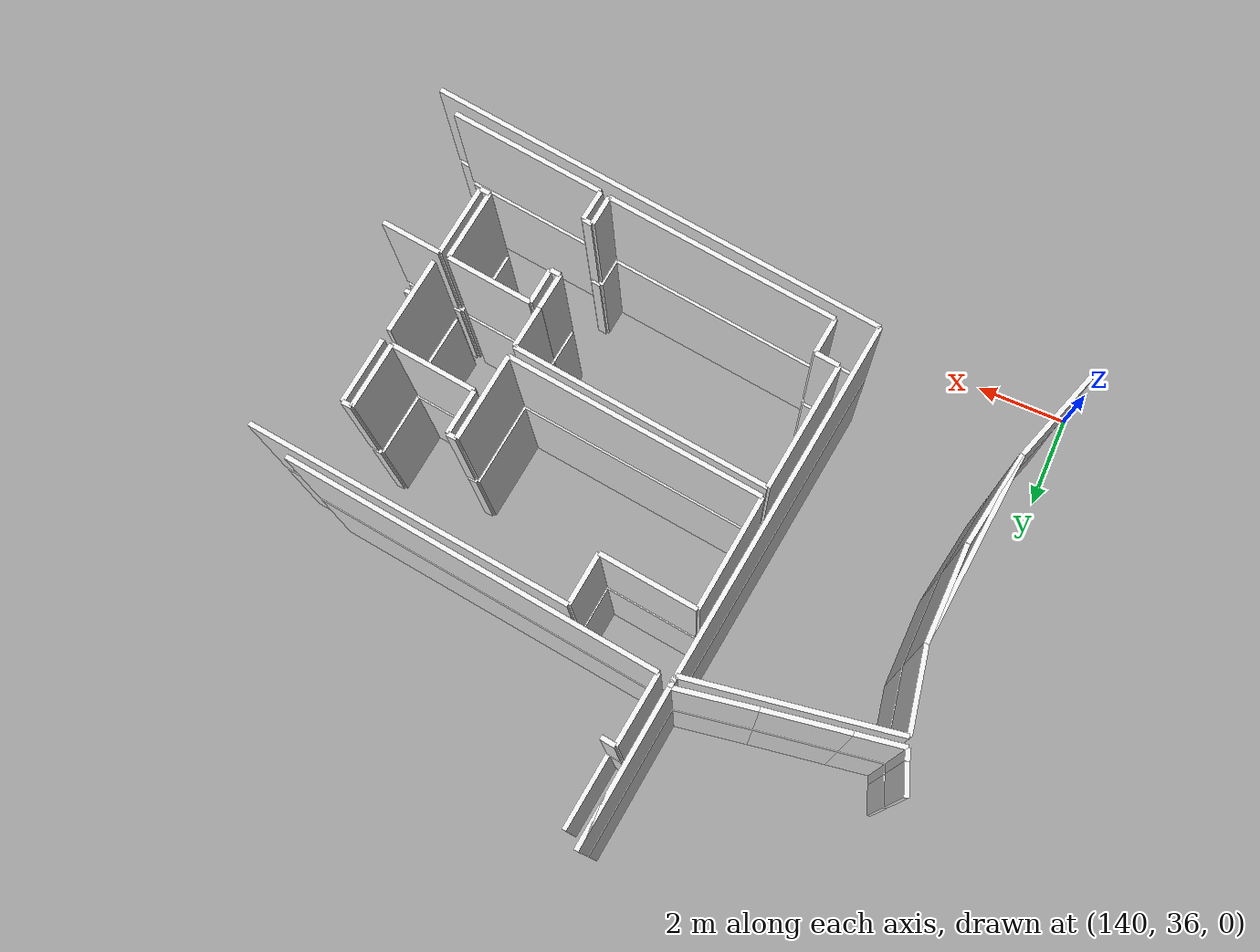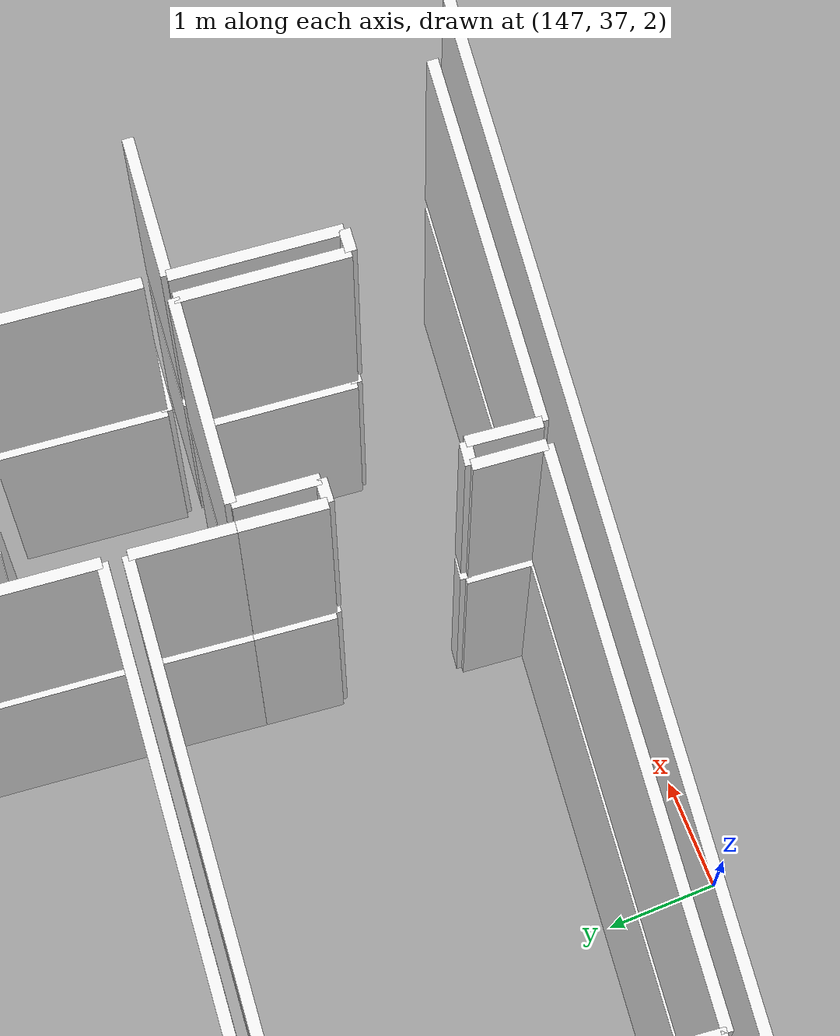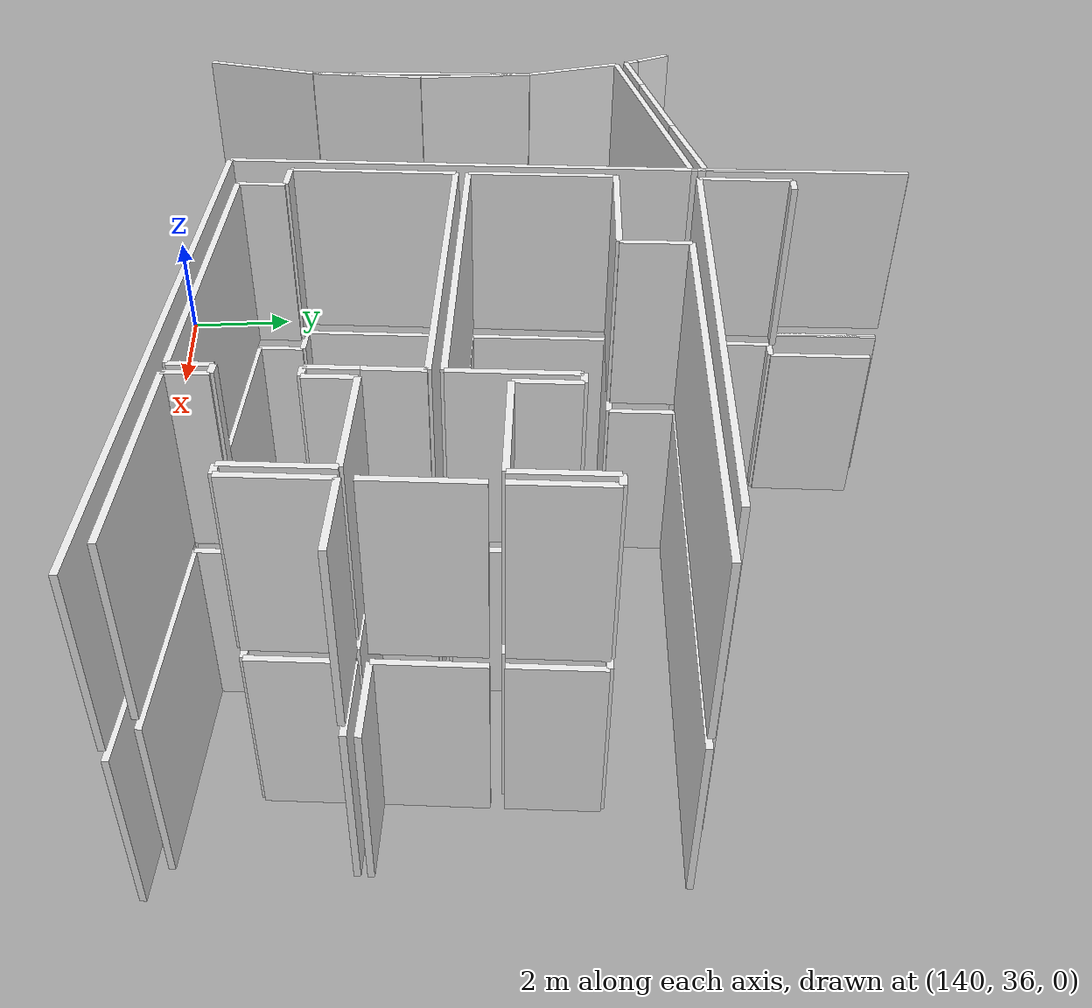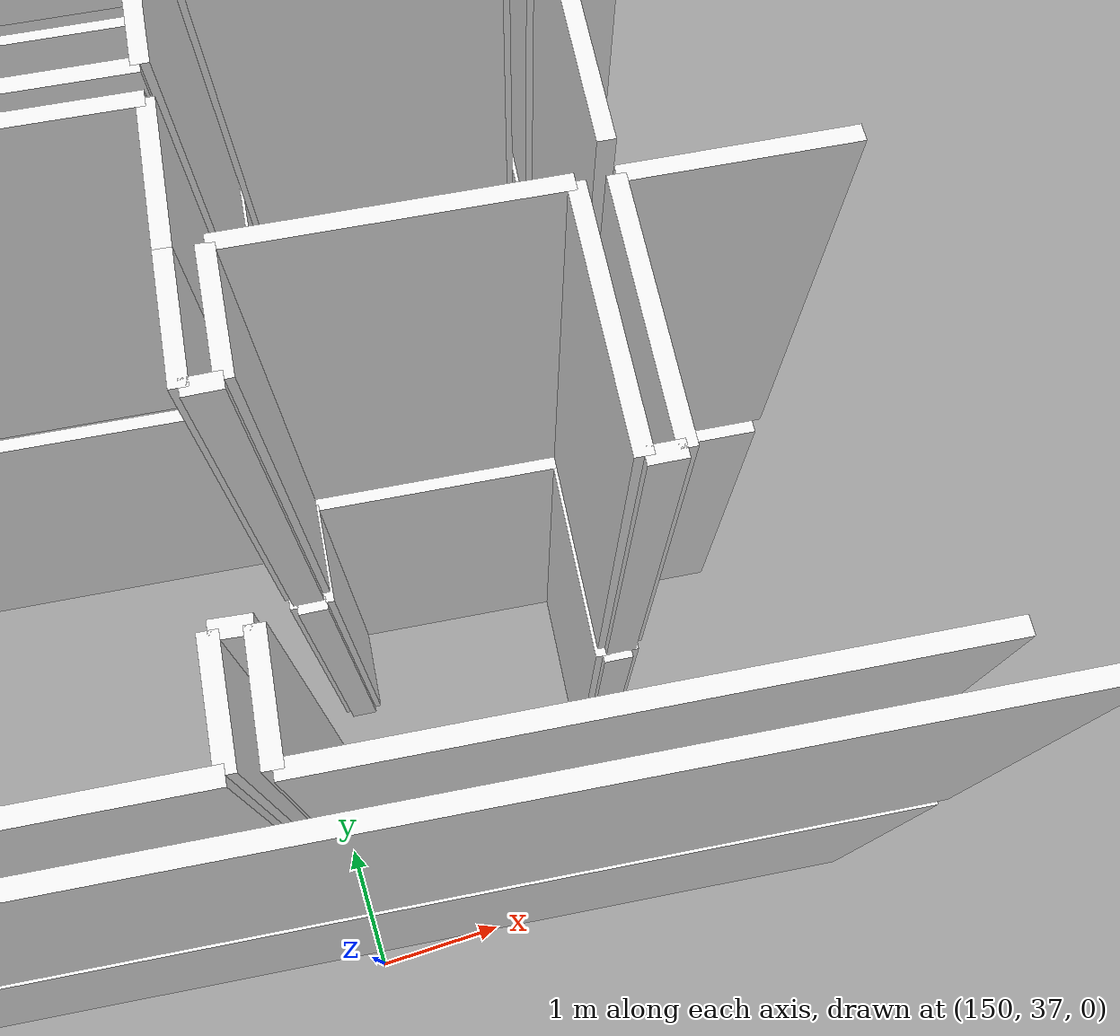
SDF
<sdf version="1.6">
 <world name="default">
  <model name="wall_150.4_39.6_0.0_link">
   <static>true</static>
   <pose>150.3649999999907 39.61500000022352 1.5 0 0 1.4513674008194029</pose>
   <link name="link">
    <visual name="visual">
     <geometry><box><size>0.7553806987169667 0.1 3</size></box></geometry>
     <material>
      <script><uri>file://media/materials/scripts/gazebo.material</uri><name>Gazebo/White</name></script>
     </material>
    </visual>
   </link>
  </model>
  <model name="wall_150.5_40.4_0.0_link">
   <static>true</static>
   <pose>150.4649999999965 40.43000000016764 1.5 0 0 1.4464413321830076</pose>
   <link name="link">
    <visual name="visual">
     <geometry><box><size>0.8868483522074317 0.1 3</size></box></geometry>
     <material>
      <script><uri>file://media/materials/scripts/gazebo.material</uri><name>Gazebo/White</name></script>
     </material>
    </visual>
   </link>
  </model>
  <model name="wall_147.8_41.2_0.0_link">
   <static>true</static>
   <pose>147.83500000002095 41.18500000005588 1.5 0 0 3.0248080581405947</pose>
   <link name="link">
    <visual name="visual">
     <geometry><box><size>5.406829015218547 0.1 3</size></box></geometry>
     <material>
      <script><uri>file://media/materials/scripts/gazebo.material</uri><name>Gazebo/White</name></script>
     </material>
    </visual>
   </link>
  </model>
  <model name="wall_145.0_40.2_0.0_link">
   <static>true</static>
   <pose>144.9900000000198 40.16500000003725 1.5 0 0 -1.690077564147906</pose>
   <link name="link">
    <visual name="visual">
     <geometry><box><size>2.689107658612167 0.1 3</size></box></geometry>
     <material>
      <script><uri>file://media/materials/scripts/gazebo.material</uri><name>Gazebo/White</name></script>
     </material>
    </visual>
   </link>
  </model>
  <model name="wall_145.1_38.8_0.0_link">
   <static>true</static>
   <pose>145.0800000000163 38.800000000046566 1.5 0 0 -0.11942892612851068</pose>
   <link name="link">
    <visual name="visual">
     <geometry><box><size>0.5035871324872246 0.1 3</size></box></geometry>
     <material>
      <script><uri>file://media/materials/scripts/gazebo.material</uri><name>Gazebo/White</name></script>
     </material>
    </visual>
   </link>
  </model>
  <model name="wall_145.3_38.4_0.0_link">
   <static>true</static>
   <pose>145.2850000000035 38.389999999897555 1.5 0 0 -1.6886684299881376</pose>
   <link name="link">
    <visual name="visual">
     <geometry><box><size>0.7653103947893748 0.1 3</size></box></geometry>
     <material>
      <script><uri>file://media/materials/scripts/gazebo.material</uri><name>Gazebo/White</name></script>
     </material>
    </visual>
   </link>
  </model>
  <model name="wall_147.7_37.7_0.0_link">
   <static>true</static>
   <pose>147.67499999998836 37.7249999998603 1.5 0 0 -0.11651301006280392</pose>
   <link name="link">
    <visual name="visual">
     <geometry><box><size>4.90324382422122 0.1 3</size></box></geometry>
     <material>
      <script><uri>file://media/materials/scripts/gazebo.material</uri><name>Gazebo/White</name></script>
     </material>
    </visual>
   </link>
  </model>
  <model name="wall_150.1_37.8_0.0_link">
   <static>true</static>
   <pose>150.14499999998952 37.75499999988824 1.5 0 0 1.4601391055905788</pose>
   <link name="link">
    <visual name="visual">
     <geometry><box><size>0.6338769595593153 0.1 3</size></box></geometry>
     <material>
      <script><uri>file://media/materials/scripts/gazebo.material</uri><name>Gazebo/White</name></script>
     </material>
    </visual>
   </link>
  </model>
  <model name="wall_150.3_38.1_0.0_link">
   <static>true</static>
   <pose>150.27999999999884 38.05499999993481 1.5 0 0 -0.14888994659904642</pose>
   <link name="link">
    <visual name="visual">
     <geometry><box><size>0.20223748414268597 0.1 3</size></box></geometry>
     <material>
      <script><uri>file://media/materials/scripts/gazebo.material</uri><name>Gazebo/White</name></script>
     </material>
    </visual>
   </link>
  </model>
  <model name="wall_150.3_37.7_0.0_link">
   <static>true</static>
   <pose>150.3399999999965 37.71999999997206 1.5 0 0 -1.695151321341658</pose>
   <link name="link">
    <visual name="visual">
     <geometry><box><size>0.6449806199952839 0.1 3</size></box></geometry>
     <material>
      <script><uri>file://media/materials/scripts/gazebo.material</uri><name>Gazebo/White</name></script>
     </material>
    </visual>
   </link>
  </model>
  <model name="wall_151.9_37.2_0.0_link">
   <static>true</static>
   <pose>151.9199999999837 37.20999999996275 1.5 0 0 -0.11675057835937525</pose>
   <link name="link">
    <visual name="visual">
     <geometry><box><size>3.2622078413023767 0.1 3</size></box></geometry>
     <material>
      <script><uri>file://media/materials/scripts/gazebo.material</uri><name>Gazebo/White</name></script>
     </material>
    </visual>
   </link>
  </model>
  <model name="wall_153.2_39.7_0.0_link">
   <static>true</static>
   <pose>153.22000000000116 39.65999999991618 1.5 0 0 3.0291655226601732</pose>
   <link name="link">
    <visual name="visual">
     <geometry><box><size>1.2478781992477335 0.1 3</size></box></geometry>
     <material>
      <script><uri>file://media/materials/scripts/gazebo.material</uri><name>Gazebo/White</name></script>
     </material>
    </visual>
   </link>
  </model>
  <model name="wall_152.5_39.0_0.0_link">
   <static>true</static>
   <pose>152.51499999998487 38.98999999999069 1.5 0 0 -1.6851599802083586</pose>
   <link name="link">
    <visual name="visual">
     <geometry><box><size>1.4897315194152685 0.1 3</size></box></geometry>
     <material>
      <script><uri>file://media/materials/scripts/gazebo.material</uri><name>Gazebo/White</name></script>
     </material>
    </visual>
   </link>
  </model>
  <model name="wall_152.3_38.3_0.0_link">
   <static>true</static>
   <pose>152.3299999999872 38.26000000000931 1.5 0 0 3.0419240010121844</pose>
   <link name="link">
    <visual name="visual">
     <geometry><box><size>0.20099751243585498 0.1 3</size></box></geometry>
     <material>
      <script><uri>file://media/materials/scripts/gazebo.material</uri><name>Gazebo/White</name></script>
     </material>
    </visual>
   </link>
  </model>
  <model name="wall_152.3_39.0_0.0_link">
   <static>true</static>
   <pose>152.31500000000233 39.01000000000931 1.5 0 0 1.4564326733426174</pose>
   <link name="link">
    <visual name="visual">
     <geometry><box><size>1.4897315194219107 0.1 3</size></box></geometry>
     <material>
      <script><uri>file://media/materials/scripts/gazebo.material</uri><name>Gazebo/White</name></script>
     </material>
    </visual>
   </link>
  </model>
  <model name="wall_151.5_39.9_0.0_link">
   <static>true</static>
   <pose>151.50500000000466 39.85499999998137 1.5 0 0 3.0248080581431034</pose>
   <link name="link">
    <visual name="visual">
     <geometry><box><size>1.8022763384447233 0.1 3</size></box></geometry>
     <material>
      <script><uri>file://media/materials/scripts/gazebo.material</uri><name>Gazebo/White</name></script>
     </material>
    </visual>
   </link>
  </model>
  <model name="wall_150.6_39.6_0.0_link">
   <static>true</static>
   <pose>150.57000000000698 39.59000000008382 1.5 0 0 -1.6784861976067038</pose>
   <link name="link">
    <visual name="visual">
     <geometry><box><size>0.7443117623918901 0.1 3</size></box></geometry>
     <material>
      <script><uri>file://media/materials/scripts/gazebo.material</uri><name>Gazebo/White</name></script>
     </material>
    </visual>
   </link>
  </model>
  <model name="wall_150.4_39.2_0.0_link">
   <static>true</static>
   <pose>150.42500000001746 39.230000000214204 1.5 0 0 3.0466409471685547</pose>
   <link name="link">
    <visual name="visual">
     <geometry><box><size>0.21095023111991618 0.1 3</size></box></geometry>
     <material>
      <script><uri>file://media/materials/scripts/gazebo.material</uri><name>Gazebo/White</name></script>
     </material>
    </visual>
   </link>
  </model>
  <model name="wall_149.6_44.9_0.0_link">
   <static>true</static>
   <pose>149.55499999999302 44.91500000003725 1.5 0 0 3.0211592075440525</pose>
   <link name="link">
    <visual name="visual">
     <geometry><box><size>7.907275131168029 0.1 3</size></box></geometry>
     <material>
      <script><uri>file://media/materials/scripts/gazebo.material</uri><name>Gazebo/White</name></script>
     </material>
    </visual>
   </link>
  </model>
  <model name="wall_145.7_46.1_0.0_link">
   <static>true</static>
   <pose>145.72000000000116 46.13000000012107 1.5 0 0 1.449769106988834</pose>
   <link name="link">
    <visual name="visual">
     <geometry><box><size>1.4909057649436974 0.1 3</size></box></geometry>
     <material>
      <script><uri>file://media/materials/scripts/gazebo.material</uri><name>Gazebo/White</name></script>
     </material>
    </visual>
   </link>
  </model>
  <model name="wall_146.0_46.9_0.0_link">
   <static>true</static>
   <pose>145.95999999999185 46.85000000009313 1.5 0 0 -0.132551532423765</pose>
   <link name="link">
    <visual name="visual">
     <geometry><box><size>0.3026549190018152 0.1 3</size></box></geometry>
     <material>
      <script><uri>file://media/materials/scripts/gazebo.material</uri><name>Gazebo/White</name></script>
     </material>
    </visual>
   </link>
  </model>
  <model name="wall_146.2_47.7_0.0_link">
   <static>true</static>
   <pose>146.20999999999185 47.675000000046566 1.5 0 0 1.4530010049136584</pose>
   <link name="link">
    <visual name="visual">
     <geometry><box><size>1.7017931718677757 0.1 3</size></box></geometry>
     <material>
      <script><uri>file://media/materials/scripts/gazebo.material</uri><name>Gazebo/White</name></script>
     </material>
    </visual>
   </link>
  </model>
  <model name="wall_152.7_40.7_0.0_link">
   <static>true</static>
   <pose>152.7149999999965 40.71999999997206 1.5 0 0 -1.6904748161031404</pose>
   <link name="link">
    <visual name="visual">
     <geometry><box><size>1.5913830458958753 0.1 3</size></box></geometry>
     <material>
      <script><uri>file://media/materials/scripts/gazebo.material</uri><name>Gazebo/White</name></script>
     </material>
    </visual>
   </link>
  </model>
  <model name="wall_153.2_39.9_0.0_link">
   <static>true</static>
   <pose>153.24499999999534 39.85499999998137 1.5 0 0 -0.11942892631213106</pose>
   <link name="link">
    <visual name="visual">
     <geometry><box><size>1.2589678312458021 0.1 3</size></box></geometry>
     <material>
      <script><uri>file://media/materials/scripts/gazebo.material</uri><name>Gazebo/White</name></script>
     </material>
    </visual>
   </link>
  </model>
  <model name="wall_152.9_42.4_0.0_link">
   <static>true</static>
   <pose>152.9100000000035 42.39999999990687 1.5 0 0 1.4553696664370197</pose>
   <link name="link">
    <visual name="visual">
     <geometry><box><size>1.3892443988310157 0.1 3</size></box></geometry>
     <material>
      <script><uri>file://media/materials/scripts/gazebo.material</uri><name>Gazebo/White</name></script>
     </material>
    </visual>
   </link>
  </model>
  <model name="wall_152.9_43.1_0.0_link">
   <static>true</static>
   <pose>152.88999999998487 43.0999999998603 1.5 0 0 3.0419240010121844</pose>
   <link name="link">
    <visual name="visual">
     <geometry><box><size>0.20099751243585498 0.1 3</size></box></geometry>
     <material>
      <script><uri>file://media/materials/scripts/gazebo.material</uri><name>Gazebo/White</name></script>
     </material>
    </visual>
   </link>
  </model>
  <model name="wall_152.7_42.4_0.0_link">
   <static>true</static>
   <pose>152.70999999999185 42.419999999925494 1.5 0 0 -1.6862229871527734</pose>
   <link name="link">
    <visual name="visual">
     <geometry><box><size>1.3892443988310157 0.1 3</size></box></geometry>
     <material>
      <script><uri>file://media/materials/scripts/gazebo.material</uri><name>Gazebo/White</name></script>
     </material>
    </visual>
   </link>
  </model>
  <model name="wall_151.7_41.8_0.0_link">
   <static>true</static>
   <pose>151.73500000001513 41.83499999996275 1.5 0 0 3.02480805813934</pose>
   <link name="link">
    <visual name="visual">
     <geometry><box><size>1.8022763383869123 0.1 3</size></box></geometry>
     <material>
      <script><uri>file://media/materials/scripts/gazebo.material</uri><name>Gazebo/White</name></script>
     </material>
    </visual>
   </link>
  </model>
  <model name="wall_150.9_42.4_0.0_link">
   <static>true</static>
   <pose>150.89500000001863 42.40999999991618 1.5 0 0 1.4543048661080447</pose>
   <link name="link">
    <visual name="visual">
     <geometry><box><size>0.9464142855493431 0.1 3</size></box></geometry>
     <material>
      <script><uri>file://media/materials/scripts/gazebo.material</uri><name>Gazebo/White</name></script>
     </material>
    </visual>
   </link>
  </model>
  <model name="wall_150.9_42.9_0.0_link">
   <static>true</static>
   <pose>150.85000000000582 42.889999999897555 1.5 0 0 3.0419240010121844</pose>
   <link name="link">
    <visual name="visual">
     <geometry><box><size>0.20099751243585498 0.1 3</size></box></geometry>
     <material>
      <script><uri>file://media/materials/scripts/gazebo.material</uri><name>Gazebo/White</name></script>
     </material>
    </visual>
   </link>
  </model>
  <model name="wall_150.6_42.0_0.0_link">
   <static>true</static>
   <pose>150.64499999998952 41.98999999999069 1.5 0 0 -1.6856729322336463</pose>
   <link name="link">
    <visual name="visual">
     <geometry><box><size>1.8320753257982048 0.1 3</size></box></geometry>
     <material>
      <script><uri>file://media/materials/scripts/gazebo.material</uri><name>Gazebo/White</name></script>
     </material>
    </visual>
   </link>
  </model>
  <model name="wall_147.9_41.4_0.0_link">
   <static>true</static>
   <pose>147.85499999998137 41.390000000130385 1.5 0 0 3.026645366783984</pose>
   <link name="link">
    <visual name="visual">
     <geometry><box><size>5.405672946089928 0.1 3</size></box></geometry>
     <material>
      <script><uri>file://media/materials/scripts/gazebo.material</uri><name>Gazebo/White</name></script>
     </material>
    </visual>
   </link>
  </model>
  <model name="wall_145.3_42.9_0.0_link">
   <static>true</static>
   <pose>145.30499999999302 42.88500000000931 1.5 0 0 1.4573613349631278</pose>
   <link name="link">
    <visual name="visual">
     <geometry><box><size>2.385330165476587 0.1 3</size></box></geometry>
     <material>
      <script><uri>file://media/materials/scripts/gazebo.material</uri><name>Gazebo/White</name></script>
     </material>
    </visual>
   </link>
  </model>
  <model name="wall_146.5_43.9_0.0_link">
   <static>true</static>
   <pose>146.45999999999185 43.949999999953434 1.5 0 0 -0.11710874445097873</pose>
   <link name="link">
    <visual name="visual">
     <geometry><box><size>2.0540691321857394 0.1 3</size></box></geometry>
     <material>
      <script><uri>file://media/materials/scripts/gazebo.material</uri><name>Gazebo/White</name></script>
     </material>
    </visual>
   </link>
  </model>
  <model name="wall_147.5_44.4_0.0_link">
   <static>true</static>
   <pose>147.53999999997905 44.37000000011176 1.5 0 0 1.460139105632832</pose>
   <link name="link">
    <visual name="visual">
     <geometry><box><size>1.086646216650026 0.1 3</size></box></geometry>
     <material>
      <script><uri>file://media/materials/scripts/gazebo.material</uri><name>Gazebo/White</name></script>
     </material>
    </visual>
   </link>
  </model>
  <model name="wall_151.0_44.5_0.0_link">
   <static>true</static>
   <pose>150.9899999999907 44.5250000001397 1.5 0 0 -0.11308479368536209</pose>
   <link name="link">
    <visual name="visual">
     <geometry><box><size>6.8235841022447685 0.1 3</size></box></geometry>
     <material>
      <script><uri>file://media/materials/scripts/gazebo.material</uri><name>Gazebo/White</name></script>
     </material>
    </visual>
   </link>
  </model>
  <model name="wall_145.5_47.2_0.0_link">
   <static>true</static>
   <pose>145.52999999999884 47.169999999925494 1.5 0 0 -1.6814535479747077</pose>
   <link name="link">
    <visual name="visual">
     <geometry><box><size>3.259938649956506 0.1 3</size></box></geometry>
     <material>
      <script><uri>file://media/materials/scripts/gazebo.material</uri><name>Gazebo/White</name></script>
     </material>
    </visual>
   </link>
  </model>
  <model name="wall_144.5_45.4_0.0_link">
   <static>true</static>
   <pose>144.53999999997905 45.41499999980442 1.5 0 0 -2.9764439761635133</pose>
   <link name="link">
    <visual name="visual">
     <geometry><box><size>1.6423458831789883 0.1 3</size></box></geometry>
     <material>
      <script><uri>file://media/materials/scripts/gazebo.material</uri><name>Gazebo/White</name></script>
     </material>
    </visual>
   </link>
  </model>
  <model name="wall_142.9_45.1_0.0_link">
   <static>true</static>
   <pose>142.88999999998487 45.14999999990687 1.5 0 0 -2.9880488711795428</pose>
   <link name="link">
    <visual name="visual">
     <geometry><box><size>1.6999999999589122 0.1 3</size></box></geometry>
     <material>
      <script><uri>file://media/materials/scripts/gazebo.material</uri><name>Gazebo/White</name></script>
     </material>
    </visual>
   </link>
  </model>
  <model name="wall_141.6_44.9_0.0_link">
   <static>true</static>
   <pose>141.56500000000233 44.94500000006519 1.5 0 0 -2.9881687321003683</pose>
   <link name="link">
    <visual name="visual">
     <geometry><box><size>0.9815294187735064 0.1 3</size></box></geometry>
     <material>
      <script><uri>file://media/materials/scripts/gazebo.material</uri><name>Gazebo/White</name></script>
     </material>
    </visual>
   </link>
  </model>
  <model name="wall_141.0_45.0_0.0_link">
   <static>true</static>
   <pose>141.0450000000128 44.985000000102445 1.5 0 0 1.8662371639889692</pose>
   <link name="link">
    <visual name="visual">
     <geometry><box><size>0.24041630558764046 0.1 3</size></box></geometry>
     <material>
      <script><uri>file://media/materials/scripts/gazebo.material</uri><name>Gazebo/White</name></script>
     </material>
    </visual>
   </link>
  </model>
  <model name="wall_140.9_45.4_0.0_link">
   <static>true</static>
   <pose>140.89999999999418 45.39500000001863 1.5 0 0 1.9277082632742863</pose>
   <link name="link">
    <visual name="visual">
     <geometry><box><size>0.6296824595282008 0.1 3</size></box></geometry>
     <material>
      <script><uri>file://media/materials/scripts/gazebo.material</uri><name>Gazebo/White</name></script>
     </material>
    </visual>
   </link>
  </model>
  <model name="wall_140.8_38.1_0.0_link">
   <static>true</static>
   <pose>140.77999999999884 38.13500000000931 1.5 0 0 1.244291450100456</pose>
   <link name="link">
    <visual name="visual">
     <geometry><box><size>1.9954197554490212 0.1 3</size></box></geometry>
     <material>
      <script><uri>file://media/materials/scripts/gazebo.material</uri><name>Gazebo/White</name></script>
     </material>
    </visual>
   </link>
  </model>
  <model name="wall_141.3_40.1_0.0_link">
   <static>true</static>
   <pose>141.26499999998487 40.06000000005588 1.5 0 0 1.4039933911592954</pose>
   <link name="link">
    <visual name="visual">
     <geometry><box><size>1.9875864760721043 0.1 3</size></box></geometry>
     <material>
      <script><uri>file://media/materials/scripts/gazebo.material</uri><name>Gazebo/White</name></script>
     </material>
    </visual>
   </link>
  </model>
  <model name="wall_141.4_42.0_0.0_link">
   <static>true</static>
   <pose>141.44000000000233 42.03499999991618 1.5 0 0 1.5607464138912803</pose>
   <link name="link">
    <visual name="visual">
     <geometry><box><size>1.9901004997328684 0.1 3</size></box></geometry>
     <material>
      <script><uri>file://media/materials/scripts/gazebo.material</uri><name>Gazebo/White</name></script>
     </material>
    </visual>
   </link>
  </model>
  <model name="wall_141.3_43.9_0.0_link">
   <static>true</static>
   <pose>141.29000000000815 43.85499999998137 1.5 0 0 1.7623576470859033</pose>
   <link name="link">
    <visual name="visual">
     <geometry><box><size>1.6807438832950772 0.1 3</size></box></geometry>
     <material>
      <script><uri>file://media/materials/scripts/gazebo.material</uri><name>Gazebo/White</name></script>
     </material>
    </visual>
   </link>
  </model>
  <model name="wall_143.2_45.0_0.0_link">
   <static>true</static>
   <pose>143.22500000000582 45.0 1.5 0 0 0.15157309554865728</pose>
   <link name="link">
    <visual name="visual">
     <geometry><box><size>4.238596465764388 0.1 3</size></box></geometry>
     <material>
      <script><uri>file://media/materials/scripts/gazebo.material</uri><name>Gazebo/White</name></script>
     </material>
    </visual>
   </link>
  </model>
  <model name="wall_144.9_41.6_0.0_link">
   <static>true</static>
   <pose>144.8649999999907 41.574999999953434 1.5 0 0 -1.6916990911057475</pose>
   <link name="link">
    <visual name="visual">
     <geometry><box><size>7.545077865498275 0.1 3</size></box></geometry>
     <material>
      <script><uri>file://media/materials/scripts/gazebo.material</uri><name>Gazebo/White</name></script>
     </material>
    </visual>
   </link>
  </model>
  <model name="wall_149.2_37.3_0.0_link">
   <static>true</static>
   <pose>149.20999999999185 37.25500000012107 1.5 0 0 -0.11922354502951144</pose>
   <link name="link">
    <visual name="visual">
     <geometry><box><size>9.668634857127264 0.1 3</size></box></geometry>
     <material>
      <script><uri>file://media/materials/scripts/gazebo.material</uri><name>Gazebo/White</name></script>
     </material>
    </visual>
   </link>
  </model>
  <model name="wall_145.5_47.1_0.0_link">
   <static>true</static>
   <pose>145.51500000001397 47.05499999993481 1.5 0 0 -1.6827185694293054</pose>
   <link name="link">
    <visual name="visual">
     <geometry><box><size>3.4918476486572034 0.1 3</size></box></geometry>
     <material>
      <script><uri>file://media/materials/scripts/gazebo.material</uri><name>Gazebo/White</name></script>
     </material>
    </visual>
   </link>
  </model>
  <model name="wall_141.3_41.1_0.0_link">
   <static>true</static>
   <pose>141.27499999999418 41.05499999993481 1.5 0 0 -1.659173112954737</pose>
   <link name="link">
    <visual name="visual">
     <geometry><box><size>3.9654760115044465 0.1 3</size></box></geometry>
     <material>
      <script><uri>file://media/materials/scripts/gazebo.material</uri><name>Gazebo/White</name></script>
     </material>
    </visual>
   </link>
  </model>
  <model name="wall_145.3_45.4_0.0_link">
   <static>true</static>
   <pose>145.3300000000163 45.36999999987893 1.5 0 0 1.373400766945016</pose>
   <link name="link">
    <visual name="visual">
     <geometry><box><size>0.10198039036683233 0.1 3</size></box></geometry>
     <material>
      <script><uri>file://media/materials/scripts/gazebo.material</uri><name>Gazebo/White</name></script>
     </material>
    </visual>
   </link>
  </model>
  <model name="wall_145.3_45.5_0.0_link">
   <static>true</static>
   <pose>145.34500000000116 45.484999999869615 1.5 0 0 1.4940244358332768</pose>
   <link name="link">
    <visual name="visual">
     <geometry><box><size>0.13038404798887343 0.1 3</size></box></geometry>
     <material>
      <script><uri>file://media/materials/scripts/gazebo.material</uri><name>Gazebo/White</name></script>
     </material>
    </visual>
   </link>
  </model>
  <model name="wall_150.4_39.6_3.2_link">
   <static>true</static>
   <pose>150.3649999999907 39.61500000022352 4.7 0 0 1.4513674008194029</pose>
   <link name="link">
    <visual name="visual">
     <geometry><box><size>0.7553806987169667 0.1 3</size></box></geometry>
     <material>
      <script><uri>file://media/materials/scripts/gazebo.material</uri><name>Gazebo/White</name></script>
     </material>
    </visual>
   </link>
  </model>
  <model name="wall_150.5_40.4_3.2_link">
   <static>true</static>
   <pose>150.4649999999965 40.43000000016764 4.7 0 0 1.4464413321830076</pose>
   <link name="link">
    <visual name="visual">
     <geometry><box><size>0.8868483522074317 0.1 3</size></box></geometry>
     <material>
      <script><uri>file://media/materials/scripts/gazebo.material</uri><name>Gazebo/White</name></script>
     </material>
    </visual>
   </link>
  </model>
  <model name="wall_147.8_41.2_3.2_link">
   <static>true</static>
   <pose>147.83500000002095 41.18500000005588 4.7 0 0 3.0248080581405947</pose>
   <link name="link">
    <visual name="visual">
     <geometry><box><size>5.406829015218547 0.1 3</size></box></geometry>
     <material>
      <script><uri>file://media/materials/scripts/gazebo.material</uri><name>Gazebo/White</name></script>
     </material>
    </visual>
   </link>
  </model>
  <model name="wall_145.0_40.2_3.2_link">
   <static>true</static>
   <pose>144.9900000000198 40.16500000003725 4.7 0 0 -1.690077564147906</pose>
   <link name="link">
    <visual name="visual">
     <geometry><box><size>2.689107658612167 0.1 3</size></box></geometry>
     <material>
      <script><uri>file://media/materials/scripts/gazebo.material</uri><name>Gazebo/White</name></script>
     </material>
    </visual>
   </link>
  </model>
  <model name="wall_145.1_38.8_3.2_link">
   <static>true</static>
   <pose>145.0800000000163 38.800000000046566 4.7 0 0 -0.11942892612851068</pose>
   <link name="link">
    <visual name="visual">
     <geometry><box><size>0.5035871324872246 0.1 3</size></box></geometry>
     <material>
      <script><uri>file://media/materials/scripts/gazebo.material</uri><name>Gazebo/White</name></script>
     </material>
    </visual>
   </link>
  </model>
  <model name="wall_145.3_38.4_3.2_link">
   <static>true</static>
   <pose>145.2850000000035 38.389999999897555 4.7 0 0 -1.6886684299881376</pose>
   <link name="link">
    <visual name="visual">
     <geometry><box><size>0.7653103947893748 0.1 3</size></box></geometry>
     <material>
      <script><uri>file://media/materials/scripts/gazebo.material</uri><name>Gazebo/White</name></script>
     </material>
    </visual>
   </link>
  </model>
  <model name="wall_147.7_37.7_3.2_link">
   <static>true</static>
   <pose>147.67499999998836 37.7249999998603 4.7 0 0 -0.11651301006280392</pose>
   <link name="link">
    <visual name="visual">
     <geometry><box><size>4.90324382422122 0.1 3</size></box></geometry>
     <material>
      <script><uri>file://media/materials/scripts/gazebo.material</uri><name>Gazebo/White</name></script>
     </material>
    </visual>
   </link>
  </model>
  <model name="wall_150.1_37.8_3.2_link">
   <static>true</static>
   <pose>150.14499999998952 37.75499999988824 4.7 0 0 1.4601391055905788</pose>
   <link name="link">
    <visual name="visual">
     <geometry><box><size>0.6338769595593153 0.1 3</size></box></geometry>
     <material>
      <script><uri>file://media/materials/scripts/gazebo.material</uri><name>Gazebo/White</name></script>
     </material>
    </visual>
   </link>
  </model>
  <model name="wall_150.3_38.1_3.2_link">
   <static>true</static>
   <pose>150.27999999999884 38.05499999993481 4.7 0 0 -0.14888994659904642</pose>
   <link name="link">
    <visual name="visual">
     <geometry><box><size>0.20223748414268597 0.1 3</size></box></geometry>
     <material>
      <script><uri>file://media/materials/scripts/gazebo.material</uri><name>Gazebo/White</name></script>
     </material>
    </visual>
   </link>
  </model>
  <model name="wall_150.3_37.7_3.2_link">
   <static>true</static>
   <pose>150.3399999999965 37.71999999997206 4.7 0 0 -1.695151321341658</pose>
   <link name="link">
    <visual name="visual">
     <geometry><box><size>0.6449806199952839 0.1 3</size></box></geometry>
     <material>
      <script><uri>file://media/materials/scripts/gazebo.material</uri><name>Gazebo/White</name></script>
     </material>
    </visual>
   </link>
  </model>
  <model name="wall_151.9_37.2_3.2_link">
   <static>true</static>
   <pose>151.9199999999837 37.20999999996275 4.7 0 0 -0.11675057835937525</pose>
   <link name="link">
    <visual name="visual">
     <geometry><box><size>3.2622078413023767 0.1 3</size></box></geometry>
     <material>
      <script><uri>file://media/materials/scripts/gazebo.material</uri><name>Gazebo/White</name></script>
     </material>
    </visual>
   </link>
  </model>
  <model name="wall_153.2_39.7_3.2_link">
   <static>true</static>
   <pose>153.22000000000116 39.65999999991618 4.7 0 0 3.0291655226601732</pose>
   <link name="link">
    <visual name="visual">
     <geometry><box><size>1.2478781992477335 0.1 3</size></box></geometry>
     <material>
      <script><uri>file://media/materials/scripts/gazebo.material</uri><name>Gazebo/White</name></script>
     </material>
    </visual>
   </link>
  </model>
  <model name="wall_152.5_39.0_3.2_link">
   <static>true</static>
   <pose>152.51499999998487 38.98999999999069 4.7 0 0 -1.6851599802083586</pose>
   <link name="link">
    <visual name="visual">
     <geometry><box><size>1.4897315194152685 0.1 3</size></box></geometry>
     <material>
      <script><uri>file://media/materials/scripts/gazebo.material</uri><name>Gazebo/White</name></script>
     </material>
    </visual>
   </link>
  </model>
  <model name="wall_152.3_38.3_3.2_link">
   <static>true</static>
   <pose>152.3299999999872 38.26000000000931 4.7 0 0 3.0419240010121844</pose>
   <link name="link">
    <visual name="visual">
     <geometry><box><size>0.20099751243585498 0.1 3</size></box></geometry>
     <material>
      <script><uri>file://media/materials/scripts/gazebo.material</uri><name>Gazebo/White</name></script>
     </material>
    </visual>
   </link>
  </model>
  <model name="wall_152.3_39.0_3.2_link">
   <static>true</static>
   <pose>152.31500000000233 39.01000000000931 4.7 0 0 1.4564326733426174</pose>
   <link name="link">
    <visual name="visual">
     <geometry><box><size>1.4897315194219107 0.1 3</size></box></geometry>
     <material>
      <script><uri>file://media/materials/scripts/gazebo.material</uri><name>Gazebo/White</name></script>
     </material>
    </visual>
   </link>
  </model>
  <model name="wall_151.5_39.9_3.2_link">
   <static>true</static>
   <pose>151.50500000000466 39.85499999998137 4.7 0 0 3.0248080581431034</pose>
   <link name="link">
    <visual name="visual">
     <geometry><box><size>1.8022763384447233 0.1 3</size></box></geometry>
     <material>
      <script><uri>file://media/materials/scripts/gazebo.material</uri><name>Gazebo/White</name></script>
     </material>
    </visual>
   </link>
  </model>
  <model name="wall_150.6_39.6_3.2_link">
   <static>true</static>
   <pose>150.57000000000698 39.59000000008382 4.7 0 0 -1.6784861976067038</pose>
   <link name="link">
    <visual name="visual">
     <geometry><box><size>0.7443117623918901 0.1 3</size></box></geometry>
     <material>
      <script><uri>file://media/materials/scripts/gazebo.material</uri><name>Gazebo/White</name></script>
     </material>
    </visual>
   </link>
  </model>
  <model name="wall_150.4_39.2_3.2_link">
   <static>true</static>
   <pose>150.42500000001746 39.230000000214204 4.7 0 0 3.0466409471685547</pose>
   <link name="link">
    <visual name="visual">
     <geometry><box><size>0.21095023111991618 0.1 3</size></box></geometry>
     <material>
      <script><uri>file://media/materials/scripts/gazebo.material</uri><name>Gazebo/White</name></script>
     </material>
    </visual>
   </link>
  </model>
  <model name="wall_149.6_44.9_3.2_link">
   <static>true</static>
   <pose>149.55499999999302 44.91500000003725 4.7 0 0 3.0211592075440525</pose>
   <link name="link">
    <visual name="visual">
     <geometry><box><size>7.907275131168029 0.1 3</size></box></geometry>
     <material>
      <script><uri>file://media/materials/scripts/gazebo.material</uri><name>Gazebo/White</name></script>
     </material>
    </visual>
   </link>
  </model>
  <model name="wall_145.7_46.1_3.2_link">
   <static>true</static>
   <pose>145.72000000000116 46.13000000012107 4.7 0 0 1.449769106988834</pose>
   <link name="link">
    <visual name="visual">
     <geometry><box><size>1.4909057649436974 0.1 3</size></box></geometry>
     <material>
      <script><uri>file://media/materials/scripts/gazebo.material</uri><name>Gazebo/White</name></script>
     </material>
    </visual>
   </link>
  </model>
  <model name="wall_146.0_46.9_3.2_link">
   <static>true</static>
   <pose>145.95999999999185 46.85000000009313 4.7 0 0 -0.132551532423765</pose>
   <link name="link">
    <visual name="visual">
     <geometry><box><size>0.3026549190018152 0.1 3</size></box></geometry>
     <material>
      <script><uri>file://media/materials/scripts/gazebo.material</uri><name>Gazebo/White</name></script>
     </material>
    </visual>
   </link>
  </model>
  <model name="wall_152.7_40.7_3.2_link">
   <static>true</static>
   <pose>152.7149999999965 40.71999999997206 4.7 0 0 -1.6904748161031404</pose>
   <link name="link">
    <visual name="visual">
     <geometry><box><size>1.5913830458958753 0.1 3</size></box></geometry>
     <material>
      <script><uri>file://media/materials/scripts/gazebo.material</uri><name>Gazebo/White</name></script>
     </material>
    </visual>
   </link>
  </model>
  <model name="wall_152.9_42.4_3.2_link">
   <static>true</static>
   <pose>152.9100000000035 42.39999999990687 4.7 0 0 1.4553696664370197</pose>
   <link name="link">
    <visual name="visual">
     <geometry><box><size>1.3892443988310157 0.1 3</size></box></geometry>
     <material>
      <script><uri>file://media/materials/scripts/gazebo.material</uri><name>Gazebo/White</name></script>
     </material>
    </visual>
   </link>
  </model>
  <model name="wall_152.9_43.1_3.2_link">
   <static>true</static>
   <pose>152.88999999998487 43.0999999998603 4.7 0 0 3.0419240010121844</pose>
   <link name="link">
    <visual name="visual">
     <geometry><box><size>0.20099751243585498 0.1 3</size></box></geometry>
     <material>
      <script><uri>file://media/materials/scripts/gazebo.material</uri><name>Gazebo/White</name></script>
     </material>
    </visual>
   </link>
  </model>
  <model name="wall_152.7_42.4_3.2_link">
   <static>true</static>
   <pose>152.70999999999185 42.419999999925494 4.7 0 0 -1.6862229871527734</pose>
   <link name="link">
    <visual name="visual">
     <geometry><box><size>1.3892443988310157 0.1 3</size></box></geometry>
     <material>
      <script><uri>file://media/materials/scripts/gazebo.material</uri><name>Gazebo/White</name></script>
     </material>
    </visual>
   </link>
  </model>
  <model name="wall_151.7_41.8_3.2_link">
   <static>true</static>
   <pose>151.73500000001513 41.83499999996275 4.7 0 0 3.02480805813934</pose>
   <link name="link">
    <visual name="visual">
     <geometry><box><size>1.8022763383869123 0.1 3</size></box></geometry>
     <material>
      <script><uri>file://media/materials/scripts/gazebo.material</uri><name>Gazebo/White</name></script>
     </material>
    </visual>
   </link>
  </model>
  <model name="wall_150.9_42.4_3.2_link">
   <static>true</static>
   <pose>150.89500000001863 42.40999999991618 4.7 0 0 1.4543048661080447</pose>
   <link name="link">
    <visual name="visual">
     <geometry><box><size>0.9464142855493431 0.1 3</size></box></geometry>
     <material>
      <script><uri>file://media/materials/scripts/gazebo.material</uri><name>Gazebo/White</name></script>
     </material>
    </visual>
   </link>
  </model>
  <model name="wall_150.9_42.9_3.2_link">
   <static>true</static>
   <pose>150.85000000000582 42.889999999897555 4.7 0 0 3.0419240010121844</pose>
   <link name="link">
    <visual name="visual">
     <geometry><box><size>0.20099751243585498 0.1 3</size></box></geometry>
     <material>
      <script><uri>file://media/materials/scripts/gazebo.material</uri><name>Gazebo/White</name></script>
     </material>
    </visual>
   </link>
  </model>
  <model name="wall_150.6_42.0_3.2_link">
   <static>true</static>
   <pose>150.64499999998952 41.98999999999069 4.7 0 0 -1.6856729322336463</pose>
   <link name="link">
    <visual name="visual">
     <geometry><box><size>1.8320753257982048 0.1 3</size></box></geometry>
     <material>
      <script><uri>file://media/materials/scripts/gazebo.material</uri><name>Gazebo/White</name></script>
     </material>
    </visual>
   </link>
  </model>
  <model name="wall_147.9_41.4_3.2_link">
   <static>true</static>
   <pose>147.85499999998137 41.390000000130385 4.7 0 0 3.026645366783984</pose>
   <link name="link">
    <visual name="visual">
     <geometry><box><size>5.405672946089928 0.1 3</size></box></geometry>
     <material>
      <script><uri>file://media/materials/scripts/gazebo.material</uri><name>Gazebo/White</name></script>
     </material>
    </visual>
   </link>
  </model>
  <model name="wall_145.3_42.9_3.2_link">
   <static>true</static>
   <pose>145.30499999999302 42.88500000000931 4.7 0 0 1.4573613349631278</pose>
   <link name="link">
    <visual name="visual">
     <geometry><box><size>2.385330165476587 0.1 3</size></box></geometry>
     <material>
      <script><uri>file://media/materials/scripts/gazebo.material</uri><name>Gazebo/White</name></script>
     </material>
    </visual>
   </link>
  </model>
  <model name="wall_146.5_43.9_3.2_link">
   <static>true</static>
   <pose>146.45999999999185 43.949999999953434 4.7 0 0 -0.11710874445097873</pose>
   <link name="link">
    <visual name="visual">
     <geometry><box><size>2.0540691321857394 0.1 3</size></box></geometry>
     <material>
      <script><uri>file://media/materials/scripts/gazebo.material</uri><name>Gazebo/White</name></script>
     </material>
    </visual>
   </link>
  </model>
  <model name="wall_147.5_44.4_3.2_link">
   <static>true</static>
   <pose>147.53999999997905 44.37000000011176 4.7 0 0 1.460139105632832</pose>
   <link name="link">
    <visual name="visual">
     <geometry><box><size>1.086646216650026 0.1 3</size></box></geometry>
     <material>
      <script><uri>file://media/materials/scripts/gazebo.material</uri><name>Gazebo/White</name></script>
     </material>
    </visual>
   </link>
  </model>
  <model name="wall_151.0_44.5_3.2_link">
   <static>true</static>
   <pose>150.9899999999907 44.5250000001397 4.7 0 0 -0.11308479368536209</pose>
   <link name="link">
    <visual name="visual">
     <geometry><box><size>6.8235841022447685 0.1 3</size></box></geometry>
     <material>
      <script><uri>file://media/materials/scripts/gazebo.material</uri><name>Gazebo/White</name></script>
     </material>
    </visual>
   </link>
  </model>
  <model name="wall_145.5_47.2_3.2_link">
   <static>true</static>
   <pose>145.52999999999884 47.169999999925494 4.7 0 0 -1.6814535479747077</pose>
   <link name="link">
    <visual name="visual">
     <geometry><box><size>3.259938649956506 0.1 3</size></box></geometry>
     <material>
      <script><uri>file://media/materials/scripts/gazebo.material</uri><name>Gazebo/White</name></script>
     </material>
    </visual>
   </link>
  </model>
  <model name="wall_144.5_45.4_3.2_link">
   <static>true</static>
   <pose>144.53999999997905 45.41499999980442 4.7 0 0 -2.9764439761635133</pose>
   <link name="link">
    <visual name="visual">
     <geometry><box><size>1.6423458831789883 0.1 3</size></box></geometry>
     <material>
      <script><uri>file://media/materials/scripts/gazebo.material</uri><name>Gazebo/White</name></script>
     </material>
    </visual>
   </link>
  </model>
  <model name="wall_142.9_45.1_3.2_link">
   <static>true</static>
   <pose>142.88999999998487 45.14999999990687 4.7 0 0 -2.9880488711795428</pose>
   <link name="link">
    <visual name="visual">
     <geometry><box><size>1.6999999999589122 0.1 3</size></box></geometry>
     <material>
      <script><uri>file://media/materials/scripts/gazebo.material</uri><name>Gazebo/White</name></script>
     </material>
    </visual>
   </link>
  </model>
  <model name="wall_141.6_44.9_3.2_link">
   <static>true</static>
   <pose>141.56500000000233 44.94500000006519 4.7 0 0 -2.9881687321003683</pose>
   <link name="link">
    <visual name="visual">
     <geometry><box><size>0.9815294187735064 0.1 3</size></box></geometry>
     <material>
      <script><uri>file://media/materials/scripts/gazebo.material</uri><name>Gazebo/White</name></script>
     </material>
    </visual>
   </link>
  </model>
  <model name="wall_141.0_45.0_3.2_link">
   <static>true</static>
   <pose>141.0450000000128 44.985000000102445 4.7 0 0 1.8662371639889692</pose>
   <link name="link">
    <visual name="visual">
     <geometry><box><size>0.24041630558764046 0.1 3</size></box></geometry>
     <material>
      <script><uri>file://media/materials/scripts/gazebo.material</uri><name>Gazebo/White</name></script>
     </material>
    </visual>
   </link>
  </model>
  <model name="wall_140.9_45.4_3.2_link">
   <static>true</static>
   <pose>140.89999999999418 45.39500000001863 4.7 0 0 1.9277082632742863</pose>
   <link name="link">
    <visual name="visual">
     <geometry><box><size>0.6296824595282008 0.1 3</size></box></geometry>
     <material>
      <script><uri>file://media/materials/scripts/gazebo.material</uri><name>Gazebo/White</name></script>
     </material>
    </visual>
   </link>
  </model>
  <model name="wall_140.8_38.1_3.2_link">
   <static>true</static>
   <pose>140.77999999999884 38.13500000000931 4.7 0 0 1.244291450100456</pose>
   <link name="link">
    <visual name="visual">
     <geometry><box><size>1.9954197554490212 0.1 3</size></box></geometry>
     <material>
      <script><uri>file://media/materials/scripts/gazebo.material</uri><name>Gazebo/White</name></script>
     </material>
    </visual>
   </link>
  </model>
  <model name="wall_141.3_40.1_3.2_link">
   <static>true</static>
   <pose>141.26499999998487 40.06000000005588 4.7 0 0 1.4039933911592954</pose>
   <link name="link">
    <visual name="visual">
     <geometry><box><size>1.9875864760721043 0.1 3</size></box></geometry>
     <material>
      <script><uri>file://media/materials/scripts/gazebo.material</uri><name>Gazebo/White</name></script>
     </material>
    </visual>
   </link>
  </model>
  <model name="wall_141.4_42.0_3.2_link">
   <static>true</static>
   <pose>141.44000000000233 42.03499999991618 4.7 0 0 1.5607464138912803</pose>
   <link name="link">
    <visual name="visual">
     <geometry><box><size>1.9901004997328684 0.1 3</size></box></geometry>
     <material>
      <script><uri>file://media/materials/scripts/gazebo.material</uri><name>Gazebo/White</name></script>
     </material>
    </visual>
   </link>
  </model>
  <model name="wall_141.3_43.9_3.2_link">
   <static>true</static>
   <pose>141.29000000000815 43.85499999998137 4.7 0 0 1.7623576470859033</pose>
   <link name="link">
    <visual name="visual">
     <geometry><box><size>1.6807438832950772 0.1 3</size></box></geometry>
     <material>
      <script><uri>file://media/materials/scripts/gazebo.material</uri><name>Gazebo/White</name></script>
     </material>
    </visual>
   </link>
  </model>
  <model name="wall_143.2_45.0_3.2_link">
   <static>true</static>
   <pose>143.22500000000582 45.0 4.7 0 0 0.15157309554865728</pose>
   <link name="link">
    <visual name="visual">
     <geometry><box><size>4.238596465764388 0.1 3</size></box></geometry>
     <material>
      <script><uri>file://media/materials/scripts/gazebo.material</uri><name>Gazebo/White</name></script>
     </material>
    </visual>
   </link>
  </model>
  <model name="wall_144.9_41.6_3.2_link">
   <static>true</static>
   <pose>144.8649999999907 41.574999999953434 4.7 0 0 -1.6916990911057475</pose>
   <link name="link">
    <visual name="visual">
     <geometry><box><size>7.545077865498275 0.1 3</size></box></geometry>
     <material>
      <script><uri>file://media/materials/scripts/gazebo.material</uri><name>Gazebo/White</name></script>
     </material>
    </visual>
   </link>
  </model>
  <model name="wall_149.2_37.3_3.2_link">
   <static>true</static>
   <pose>149.20999999999185 37.25500000012107 4.7 0 0 -0.11922354502951144</pose>
   <link name="link">
    <visual name="visual">
     <geometry><box><size>9.668634857127264 0.1 3</size></box></geometry>
     <material>
      <script><uri>file://media/materials/scripts/gazebo.material</uri><name>Gazebo/White</name></script>
     </material>
    </visual>
   </link>
  </model>
  <model name="wall_145.5_47.1_3.2_link">
   <static>true</static>
   <pose>145.51500000001397 47.05499999993481 4.7 0 0 -1.6827185694293054</pose>
   <link name="link">
    <visual name="visual">
     <geometry><box><size>3.4918476486572034 0.1 3</size></box></geometry>
     <material>
      <script><uri>file://media/materials/scripts/gazebo.material</uri><name>Gazebo/White</name></script>
     </material>
    </visual>
   </link>
  </model>
  <model name="wall_141.3_41.1_3.2_link">
   <static>true</static>
   <pose>141.27499999999418 41.05499999993481 4.7 0 0 -1.659173112954737</pose>
   <link name="link">
    <visual name="visual">
     <geometry><box><size>3.9654760115044465 0.1 3</size></box></geometry>
     <material>
      <script><uri>file://media/materials/scripts/gazebo.material</uri><name>Gazebo/White</name></script>
     </material>
    </visual>
   </link>
  </model>
  <model name="wall_145.3_45.4_3.2_link">
   <static>true</static>
   <pose>145.3300000000163 45.36999999987893 4.7 0 0 1.373400766945016</pose>
   <link name="link">
    <visual name="visual">
     <geometry><box><size>0.10198039036683233 0.1 3</size></box></geometry>
     <material>
      <script><uri>file://media/materials/scripts/gazebo.material</uri><name>Gazebo/White</name></script>
     </material>
    </visual>
   </link>
  </model>
  <model name="wall_145.3_45.5_3.2_link">
   <static>true</static>
   <pose>145.34500000000116 45.484999999869615 4.7 0 0 1.4940244358332768</pose>
   <link name="link">
    <visual name="visual">
     <geometry><box><size>0.13038404798887343 0.1 3</size></box></geometry>
     <material>
      <script><uri>file://media/materials/scripts/gazebo.material</uri><name>Gazebo/White</name></script>
     </material>
    </visual>
   </link>
  </model>
 </world>
</sdf>
